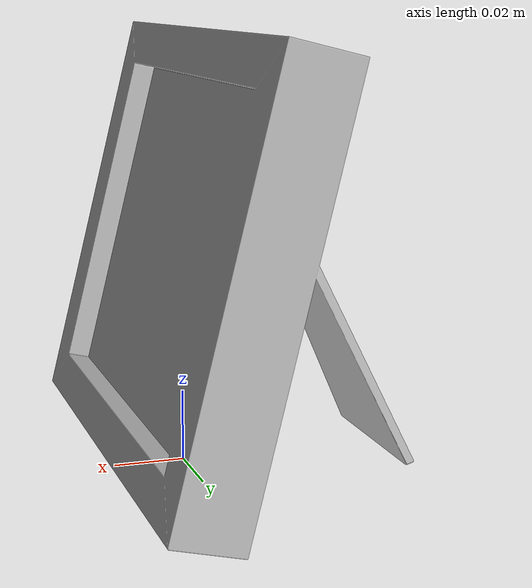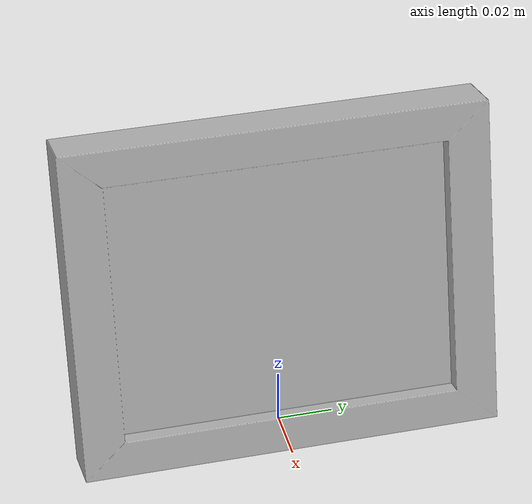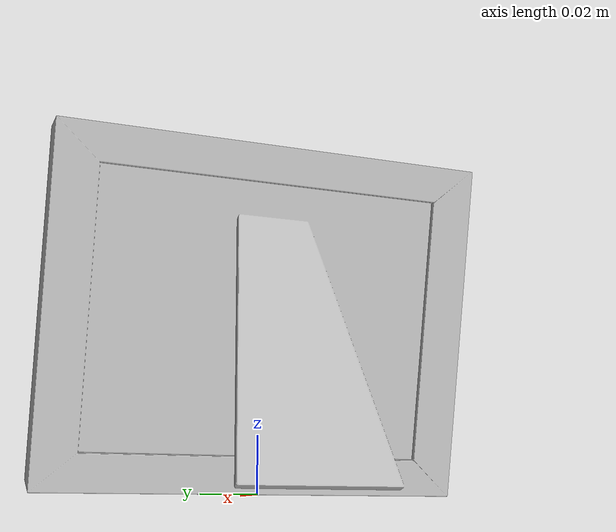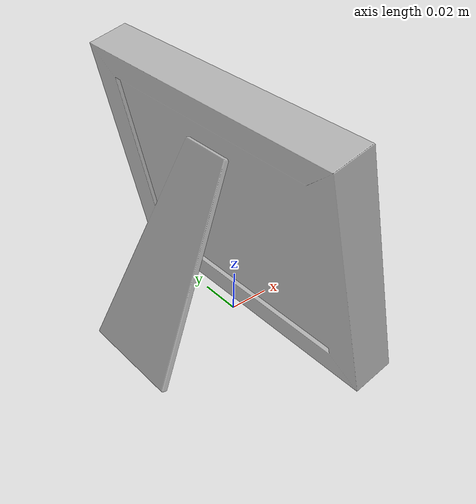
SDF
<?xml version='1.0'?>
<sdf version='1.4'>
  <model name='257'>
    <pose>0 0 0 0 0 0</pose>
    <static>true</static>
    <link name='link'>
      <collision name='collision'>
        <pose>0 0 0 0 0 0</pose>
        <geometry>
          <box>
            <size>0.0844533 0.15 2</size>
          </box>
        </geometry>
      </collision>
      <visual name='visual'>
        <pose>0 0 0 0 0 0</pose>
        <geometry>
          <mesh><uri>model://257/257.dae</uri></mesh>
        </geometry>
      </visual>
    </link>
  </model>
</sdf>
